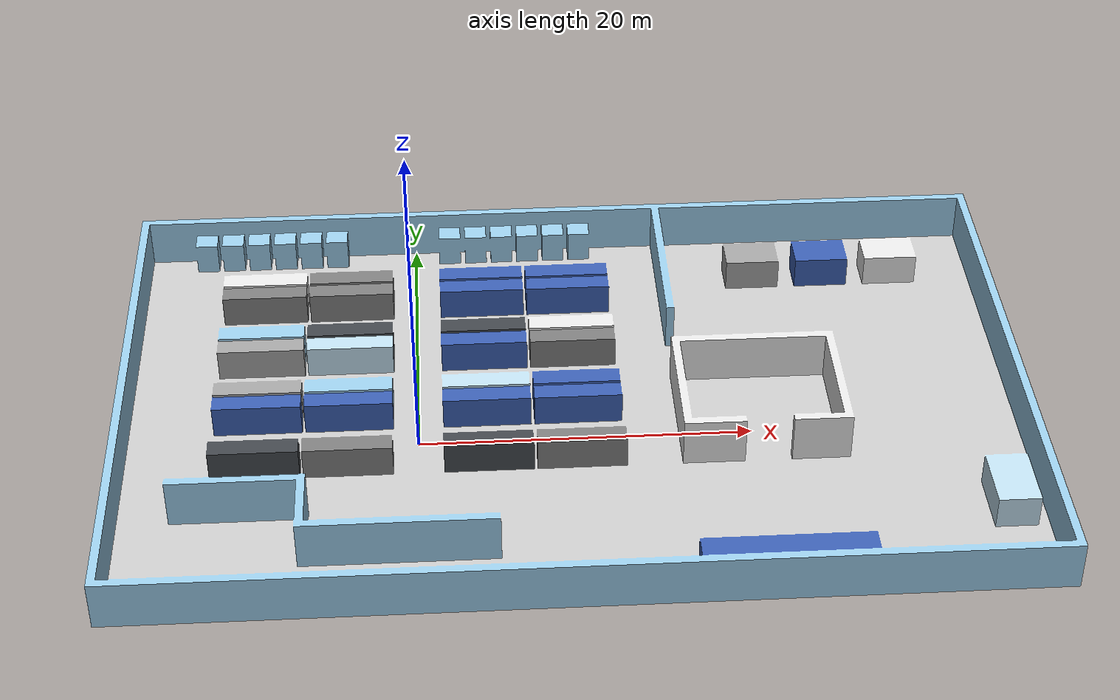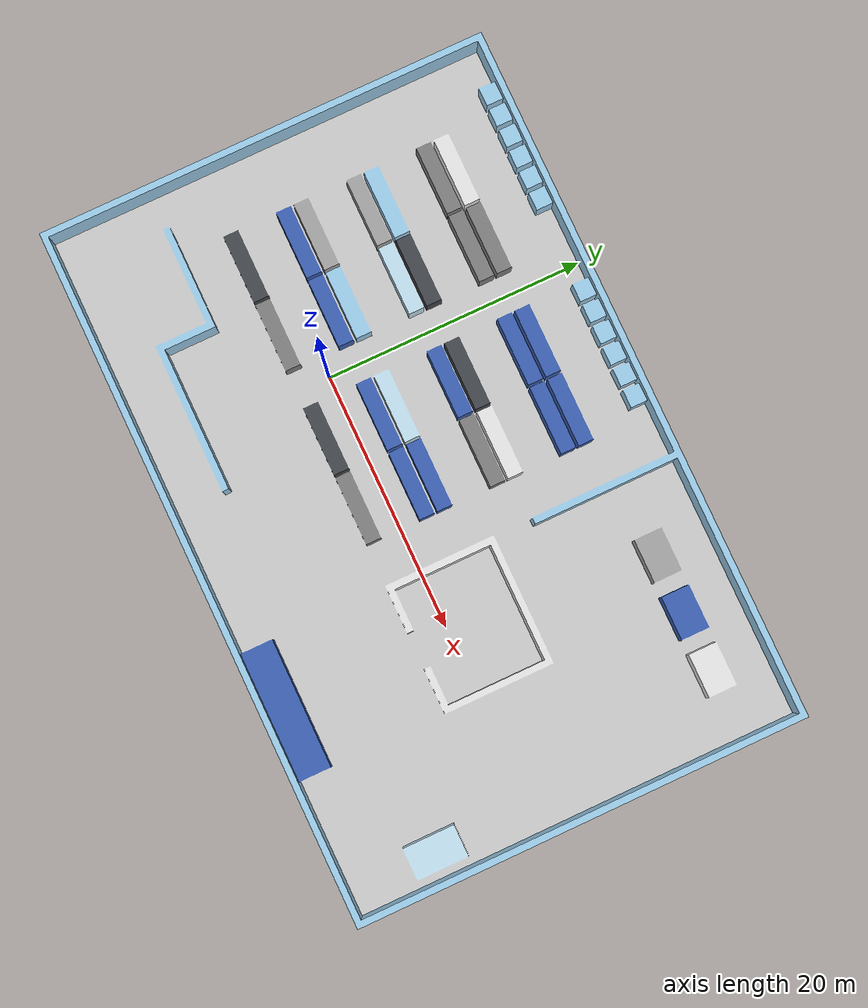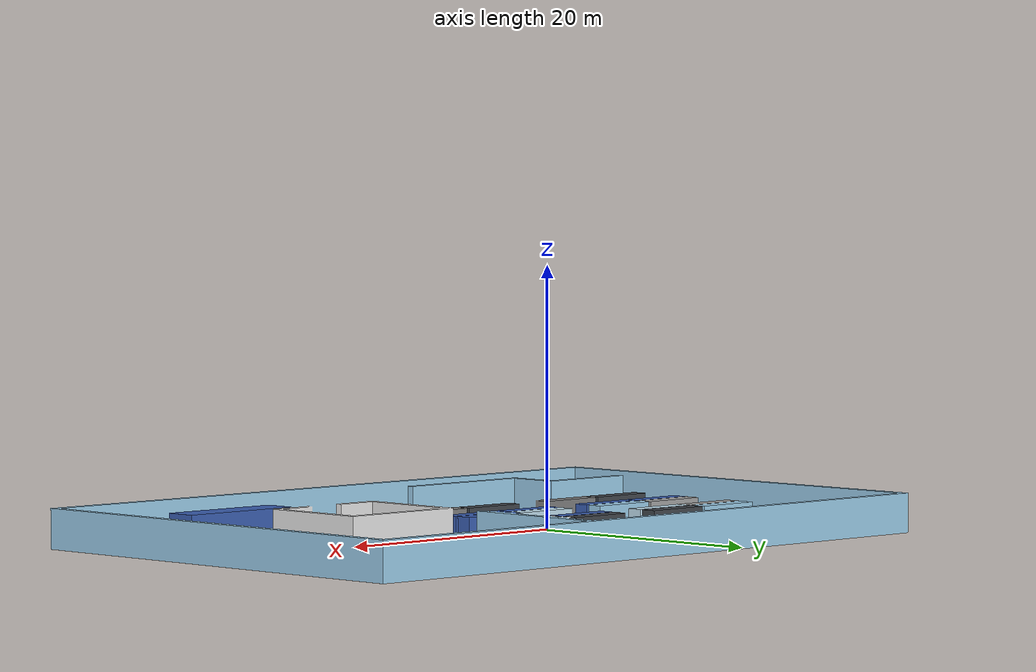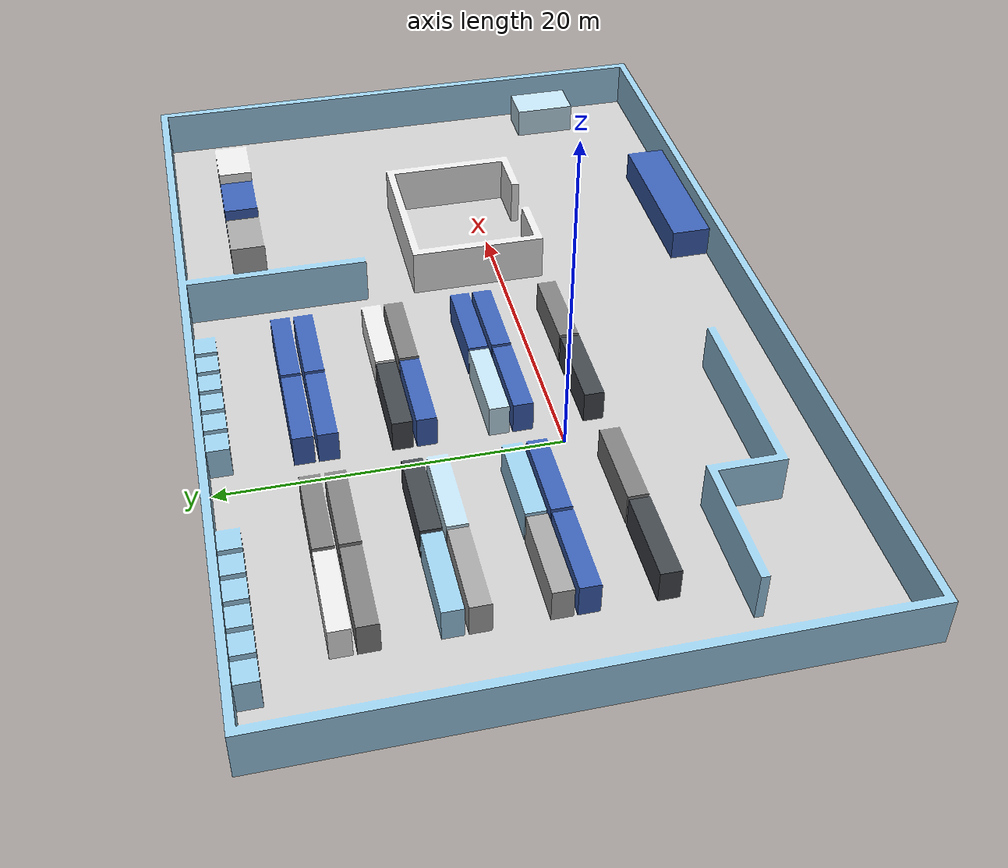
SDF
<?xml version="1.0" ?>
<sdf version="1.6">
  <model name="example_factory">
    <static>true</static>
    <link name="link">
    <pose>0 0.0 0.0 0 0 0</pose>

      <collision name="collision">
      <pose>0 0.0 -0.05 0 0 0</pose>
        <geometry>
          <mesh>
            <uri>model://example_factory/meshes/example_factory_nofloor.dae</uri>
          </mesh>
        </geometry>
      </collision>

      <visual name="visual">
        <geometry>
          <mesh>
            <uri>model://example_factory/meshes/example_factory_floor.dae</uri>
          </mesh>
        </geometry>
      </visual>
    </link>
  </model>
</sdf>
